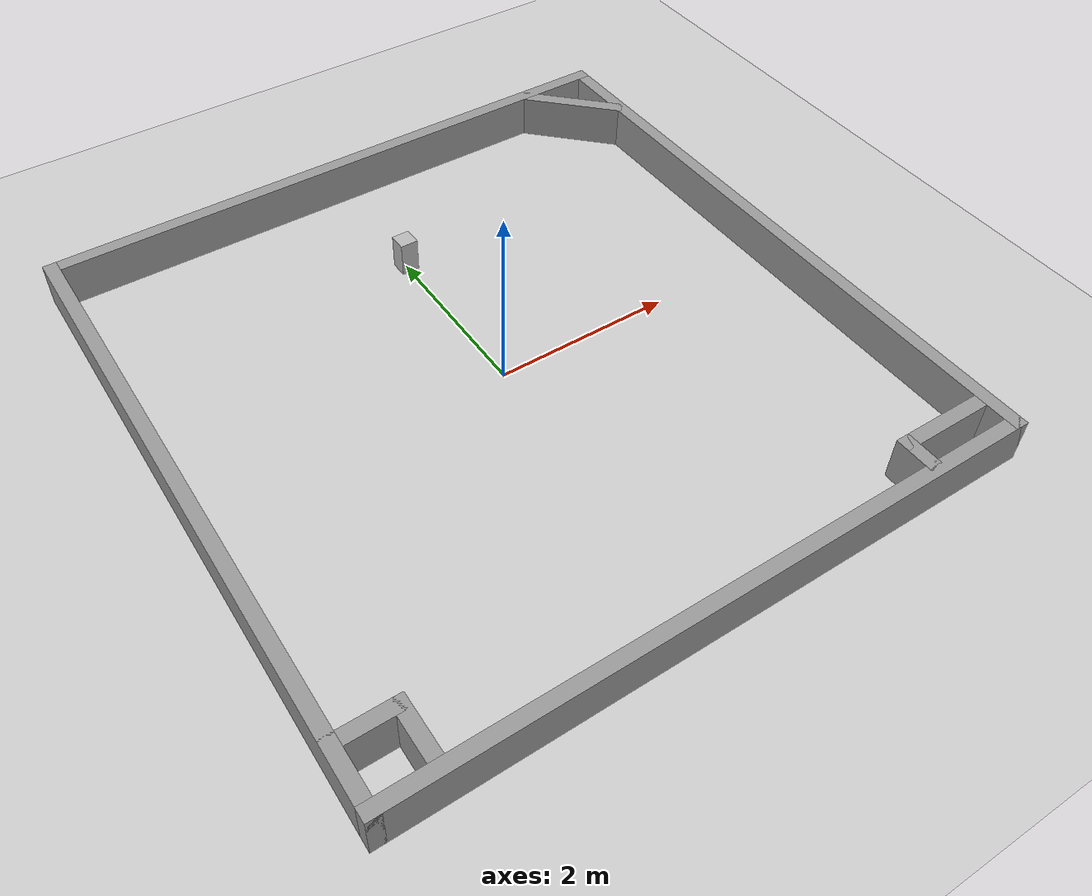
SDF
<sdf version="1.7">
 <world name="default">
  <light name="sun" type="directional">
   <pose>0 0 10 0 -0 0</pose>
   <diffuse>0.8 0.8 0.8 1</diffuse>
   <specular>0.2 0.2 0.2 1</specular>
   <attenuation>
    <range>1000</range>
    <constant>0.9</constant>
    <linear>0.01</linear>
    <quadratic>0.001</quadratic>
   </attenuation>
   <direction>-0.5 0.1 -0.9</direction>
   <spot><inner_angle>0</inner_angle><outer_angle>0</outer_angle><falloff>0</falloff></spot>
  </light>
  <model name="ground_plane">
   <static>1</static>
   <link name="link">
    <collision name="collision">
     <geometry><plane><normal>0 0 1</normal><size>100 100</size></plane></geometry>
     <surface>
      <contact><collide_bitmask>65535</collide_bitmask></contact>
      <friction><ode><mu>100</mu><mu2>50</mu2></ode></friction>
     </surface>
    </collision>
    <visual name="visual">
     <cast_shadows>0</cast_shadows>
     <geometry><plane><normal>0 0 1</normal><size>100 100</size></plane></geometry>
     <material>
      <script><uri>file://media/materials/scripts/gazebo.material</uri><name>Gazebo/Grey</name></script>
     </material>
    </visual>
   </link>
  </model>
  <gravity>0 0 -9.8</gravity>
  <magnetic_field>6e-06 2.3e-05 -4.2e-05</magnetic_field>
  <atmosphere type="adiabatic"/>
  <physics type="ode">
   <max_step_size>0.001</max_step_size>
   <real_time_factor>1</real_time_factor>
   <real_time_update_rate>1000</real_time_update_rate>
  </physics>
  <scene><ambient>0.4 0.4 0.4 1</ambient><background>0.7 0.7 0.7 1</background><shadows>1</shadows></scene>
  <spherical_coordinates>
   <surface_model>EARTH_WGS84</surface_model>
   <latitude_deg>0</latitude_deg>
   <longitude_deg>0</longitude_deg>
   <elevation>0</elevation>
   <heading_deg>0</heading_deg>
  </spherical_coordinates>
  <model name="rectangle">
   <link name="Wall_0">
    <collision name="Wall_0_Collision">
     <geometry><box><size>7 0.15 0.5</size></box></geometry>
     <pose>0 0 0.25 0 -0 0</pose>
    </collision>
    <visual name="Wall_0_Visual">
     <pose>0 0 0.25 0 -0 0</pose>
     <geometry><box><size>7 0.15 0.5</size></box></geometry>
     <material>
      <script><uri>file://media/materials/scripts/gazebo.material</uri><name>Gazebo/Grey</name></script>
      <ambient>1 1 1 1</ambient>
     </material>
     <meta><layer>0</layer></meta>
    </visual>
    <pose>0 -3.5 0 0 -0 0</pose>
   </link>
   <link name="Wall_13">
    <collision name="Wall_13_Collision">
     <geometry><box><size>0.5 0.15 0.5</size></box></geometry>
     <pose>0 0 0.25 0 -0 0</pose>
    </collision>
    <visual name="Wall_13_Visual">
     <pose>0 0 0.25 0 -0 0</pose>
     <geometry><box><size>0.5 0.15 0.5</size></box></geometry>
     <material>
      <script><uri>file://media/materials/scripts/gazebo.material</uri><name>Gazebo/Grey</name></script>
      <ambient>1 1 1 1</ambient>
     </material>
     <meta><layer>0</layer></meta>
    </visual>
    <pose>2.389 -3.312 0 0 -0 1.5708</pose>
   </link>
   <link name="Wall_14">
    <collision name="Wall_14_Collision">
     <geometry><box><size>1.1 0.15 0.5</size></box></geometry>
     <pose>0 0 0.25 0 -0 0</pose>
    </collision>
    <visual name="Wall_14_Visual">
     <pose>0 0 0.25 0 -0 0</pose>
     <geometry><box><size>1.1 0.15 0.5</size></box></geometry>
     <material>
      <script><uri>file://media/materials/scripts/gazebo.material</uri><name>Gazebo/Grey</name></script>
      <ambient>1 1 1 1</ambient>
     </material>
     <meta><layer>0</layer></meta>
    </visual>
    <pose>2.864 -3.137 0 0 -0 0</pose>
   </link>
   <link name="Wall_17">
    <collision name="Wall_17_Collision">
     <geometry><box><size>1.25 0.15 0.5</size></box></geometry>
     <pose>0 0 0.25 0 -0 0</pose>
    </collision>
    <visual name="Wall_17_Visual">
     <pose>0 0 0.25 0 -0 0</pose>
     <geometry><box><size>1.25 0.15 0.5</size></box></geometry>
     <material>
      <script><uri>file://media/materials/scripts/gazebo.material</uri><name>Gazebo/Grey</name></script>
      <ambient>1 1 1 1</ambient>
     </material>
     <meta><layer>0</layer></meta>
    </visual>
    <pose>2.984 3.067 0 0 -0 -0.785398</pose>
   </link>
   <link name="Wall_3">
    <collision name="Wall_3_Collision">
     <geometry><box><size>7.15 0.15 0.5</size></box></geometry>
     <pose>0 0 0.25 0 -0 0</pose>
    </collision>
    <visual name="Wall_3_Visual">
     <pose>0 0 0.25 0 -0 0</pose>
     <geometry><box><size>7.15 0.15 0.5</size></box></geometry>
     <material>
      <script><uri>file://media/materials/scripts/gazebo.material</uri><name>Gazebo/Grey</name></script>
      <ambient>1 1 1 1</ambient>
     </material>
     <meta><layer>0</layer></meta>
    </visual>
    <pose>-3.425 -0 0 0 -0 1.5708</pose>
   </link>
   <link name="Wall_4">
    <collision name="Wall_4_Collision">
     <geometry><box><size>7 0.15 0.5</size></box></geometry>
     <pose>0 0 0.25 0 -0 0</pose>
    </collision>
    <visual name="Wall_4_Visual">
     <pose>0 0 0.25 0 -0 0</pose>
     <geometry><box><size>7 0.15 0.5</size></box></geometry>
     <material>
      <script><uri>file://media/materials/scripts/gazebo.material</uri><name>Gazebo/Grey</name></script>
      <ambient>1 1 1 1</ambient>
     </material>
     <meta><layer>0</layer></meta>
    </visual>
    <pose>0 3.5 0 0 -0 0</pose>
   </link>
   <link name="Wall_5">
    <collision name="Wall_5_Collision">
     <geometry><box><size>7.15 0.15 0.5</size></box></geometry>
     <pose>0 0 0.25 0 -0 0</pose>
    </collision>
    <visual name="Wall_5_Visual">
     <pose>0 0 0.25 0 -0 0</pose>
     <geometry><box><size>7.15 0.15 0.5</size></box></geometry>
     <material>
      <script><uri>file://media/materials/scripts/gazebo.material</uri><name>Gazebo/Grey</name></script>
      <ambient>1 1 1 1</ambient>
     </material>
     <meta><layer>0</layer></meta>
    </visual>
    <pose>3.425 -0 0 0 -0 -1.5708</pose>
   </link>
   <link name="Wall_8">
    <collision name="Wall_8_Collision">
     <geometry><box><size>0.75 0.15 0.5</size></box></geometry>
     <pose>0 0 0.25 0 -0 0</pose>
    </collision>
    <visual name="Wall_8_Visual">
     <pose>0 0 0.25 0 -0 0</pose>
     <geometry><box><size>0.75 0.15 0.5</size></box></geometry>
     <material>
      <script><uri>file://media/materials/scripts/gazebo.material</uri><name>Gazebo/Grey</name></script>
      <ambient>1 1 1 1</ambient>
     </material>
     <meta><layer>0</layer></meta>
    </visual>
    <pose>-3.119 -2.889 0 0 -0 0</pose>
   </link>
   <link name="Wall_9">
    <collision name="Wall_9_Collision">
     <geometry><box><size>0.75 0.15 0.5</size></box></geometry>
     <pose>0 0 0.25 0 -0 0</pose>
    </collision>
    <visual name="Wall_9_Visual">
     <pose>0 0 0.25 0 -0 0</pose>
     <geometry><box><size>0.75 0.15 0.5</size></box></geometry>
     <material>
      <script><uri>file://media/materials/scripts/gazebo.material</uri><name>Gazebo/Grey</name></script>
      <ambient>1 1 1 1</ambient>
     </material>
     <meta><layer>0</layer></meta>
    </visual>
    <pose>-2.819 -3.189 0 0 -0 -1.5708</pose>
   </link>
   <static>1</static>
  </model>
  <model name="box111">
   <pose>0 2 0.2 0 0 0</pose>
   <link name="link">
    <collision name="collision11"><geometry><box><size>0.2 0.2 0.4</size></box></geometry></collision>
    <visual name="visual11"><geometry><box><size>0.2 0.2 0.4</size></box></geometry></visual>
   </link>
  </model>
 </world>
</sdf>
